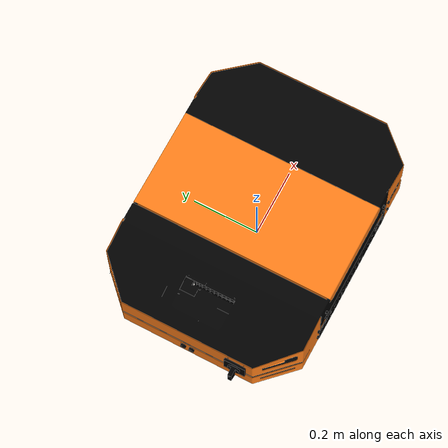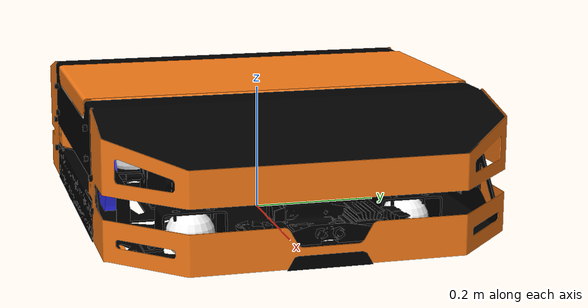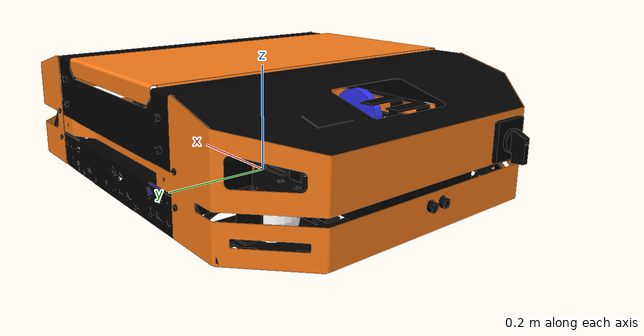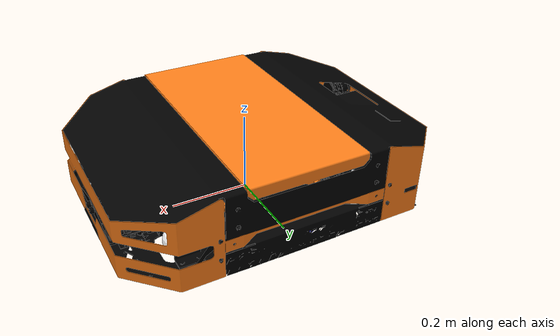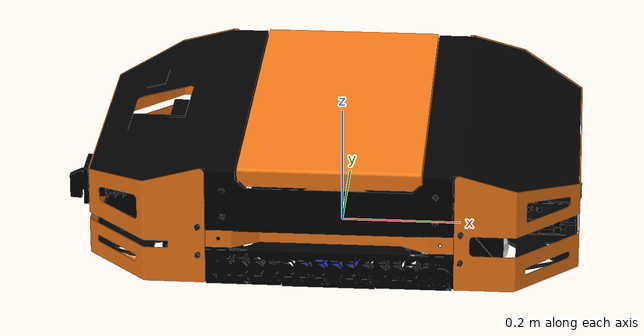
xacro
<?xml version="1.0"?>
<robot xmlns:xacro="http://www.ros.org/wiki/xacro" >

    <xacro:include filename="inertial_macros.xacro"/>

    <xacro:property name="chassis_length" value="0.86"/>
    <xacro:property name="chassis_width" value="0.62"/>
    <xacro:property name="chassis_height" value="0.15"/>
    <xacro:property name="chassis_mass" value="30.0"/>
    <xacro:property name="wheel_radius" value="0.0625"/>
    <xacro:property name="wheel_thickness" value="0.02"/>
    <xacro:property name="wheel_mass" value="0.5"/>
    <xacro:property name="wheel_offset_x" value="0"/>
    <xacro:property name="wheel_offset_y" value="0.25"/>
    <xacro:property name="wheel_offset_z" value="0.04"/>
    <xacro:property name="caster_wheel_radius" value="${0.03/2.0}"/>
    <xacro:property name="caster_wheel_mass" value="0.3"/>
    <xacro:property name="caster_wheel_offset_x" value="0.15"/>
    <xacro:property name="caster_wheel_offset_z" value="0.014"/>

    <material name="white">
        <color rgba="1 1 1 1" />
    </material>

    <material name="orange">
        <color rgba="1.0 0.5 0.1 1.0"/>
    </material>

    <material name="blue">
        <color rgba="0.2 0.2 1 1"/>
    </material>

    <material name="black">
        <color rgba="0 0 0 1"/>
    </material>

    <material name="red">
        <color rgba="1 0 0 1"/>
    </material>

    <!-- BASE LINK -->

    <link name="base_link">
    </link>

    <!-- BASE_FOOTPRINT LINK -->

    <joint name="base_footprint_joint" type="fixed">
        <parent link="base_link"/>
        <child link="base_footprint"/>
        <origin xyz="0 0 0" rpy="0 0 0"/>
    </joint>

    <link name="base_footprint">
    </link>

    <!-- CHASSIS LINK -->

    <joint name="chassis_joint" type="fixed">
        <parent link="base_link"/>
        <child link="chassis"/>
        <origin xyz="0 0 0.0225"/>
    </joint>

    <link name="chassis">
        <visual>
            <origin xyz="-0.445 -0.31 -0.015" rpy="${pi/2} 0 ${pi/2}"/>
            <geometry>
                <mesh filename="package://warehouse_real_description/meshes/chassis.STL" scale="0.001 0.001 0.001"/>
            </geometry>
            <material name="black"/>
        </visual>
        <!-- Rear Body Collision (75% Length, Raised 6cm for Caster Clearance) -->
        <collision>
            <origin xyz="${-chassis_length/8} 0 0.105" rpy="0 0 0"/>
            <geometry>
                <box size="${chassis_length*0.75} 0.45 0.09"/>
            </geometry>
        </collision>

        <!-- Front Top Lip Collision (25% Length, Top 5th for Lidar Clearance) -->
        <collision>
            <origin xyz="${3*chassis_length/8} 0 ${9*chassis_height/10}" rpy="0 0 0"/>
            <geometry>
                <box size="${chassis_length*0.25} 0.45 ${chassis_height/5}"/>
            </geometry>
        </collision>
        <xacro:inertial_box mass="0.5" x="${chassis_length}" y="${chassis_width}" z="${chassis_height}">
            <origin xyz="${chassis_length/2} 0 ${chassis_height/2}" rpy="0 0 0"/>
        </xacro:inertial_box>
    </link>

    <gazebo reference="chassis">
        <material>Gazebo/White</material>
    </gazebo>

    <!-- SIDE COVER LINK -->
    <joint name="side_cover_joint" type="fixed">
        <parent link="chassis"/>
        <child link="side_cover"/>
        <origin xyz="0 0 0" rpy="0 0 0"/>
    </joint>

    <link name="side_cover">
        <visual>
            <origin xyz="-0.407 -0.303 -0.0035" rpy="${pi/2} 0 ${pi/2}"/>
            <geometry>
                <mesh filename="package://warehouse_real_description/meshes/side_cover.STL" scale="0.001 0.001 0.001"/>
            </geometry>
            <material name="orange"/>
        </visual>
        <xacro:inertial_box mass="0.1" x="0.1" y="0.1" z="0.1">
            <origin xyz="0 0 0" rpy="0 0 0"/>
        </xacro:inertial_box>
    </link>

    <!-- LEFT WHEEL LINK -->

    <joint name="left_wheel_joint" type="continuous">
        <parent link="chassis"/>
        <child link="left_wheel"/>
        <origin xyz="0 ${wheel_offset_y} ${wheel_offset_z}" rpy="-${pi/2} 0 0" />
        <axis xyz="0 0 1"/>
    </joint>

    <link name="left_wheel">
        <visual>
            <geometry>
                <cylinder radius="${wheel_radius}" length="${wheel_thickness}"/>
            </geometry>
            <material name="blue"/>
        </visual>
        <collision>
            <geometry>
                <sphere radius="${wheel_radius}"/>
            </geometry>
        </collision>
        <xacro:inertial_cylinder mass="${wheel_mass}" length="${wheel_thickness}" radius="${wheel_radius}">
            <origin xyz="0 0 0" rpy="0 0 0"/>
        </xacro:inertial_cylinder>
    </link>

    <gazebo reference="left_wheel">
        <material>Gazebo/Orange</material>
    </gazebo>

    <!-- RIGHT WHEEL LINK -->

    <joint name="right_wheel_joint" type="continuous">
        <parent link="chassis"/>
        <child link="right_wheel"/>
        <origin xyz="0 ${-wheel_offset_y} ${wheel_offset_z}" rpy="${pi/2} 0 0" />
        <axis xyz="0 0 -1"/>
    </joint>

    <link name="right_wheel">
        <visual>
            <geometry>
                <cylinder radius="${wheel_radius}" length="${wheel_thickness}"/>
            </geometry>
            <material name="blue"/>
        </visual>
        <collision>
            <geometry>
                <sphere radius="${wheel_radius}"/>
            </geometry>
        </collision>
        <xacro:inertial_cylinder mass="${wheel_mass}" length="${wheel_thickness}" radius="${wheel_radius}">
            <origin xyz="0 0 0" rpy="0 0 0"/>
        </xacro:inertial_cylinder>
    </link>

    <gazebo reference="right_wheel">
        <material>Gazebo/Orange</material>
    </gazebo>

    <!-- CASTER WHEEL MACRO -->
    <xacro:macro name="caster_wheel" params="prefix x_pos y_pos">
        <joint name="${prefix}_caster_wheel_joint" type="fixed">
            <parent link="chassis"/>
            <child link="${prefix}_caster_wheel"/>
            <origin xyz="${x_pos} ${y_pos} ${caster_wheel_offset_z}"/>
        </joint>

        <link name="${prefix}_caster_wheel">
            <visual>
                <geometry>
                    <sphere radius="0.0365"/>
                </geometry>
                <material name="white"/>
            </visual>
            <collision>
                <geometry>
                    <sphere radius="0.0365"/>
                </geometry>
            </collision>
            <xacro:inertial_sphere mass="0.1" radius="0.0365">
                <origin xyz="0 0 0" rpy="0 0 0"/>
            </xacro:inertial_sphere>
        </link>

        <gazebo reference="${prefix}_caster_wheel">
            <material>Gazebo/White</material>
            <mu1 value="0.001"/>
            <mu2 value="0.001"/>
        </gazebo>
    </xacro:macro>

    <!-- CASTER WHEEL INSTANCES -->
    <xacro:caster_wheel prefix="front_right" x_pos="0.25" y_pos="-0.165"/>
    <xacro:caster_wheel prefix="front_left" x_pos="0.25" y_pos="0.165"/>
    <xacro:caster_wheel prefix="rear_right" x_pos="-0.25" y_pos="-0.165"/>
    <xacro:caster_wheel prefix="rear_left" x_pos="-0.25" y_pos="0.165"/>

    <!-- IMU LINK -->
    <link name="imu_link">
    <visual>
        <geometry>
            <box size="0.01 0.01 0.01"/>
        </geometry>
        <material name="black"/>
    </visual>
    </link>

    <joint name="imu_joint" type="fixed">
        <parent link="base_link"/>
        <child link="imu_link"/>
        <origin xyz="0 0 0.05" rpy="0 0 3.14159"/>
    </joint>

    <link name="lifter_link">
        <visual>
            <origin xyz="-0.15 -0.305 -0.19" rpy="${pi/2} 0 ${pi/2}"/>
            <geometry>
                <mesh filename="package://warehouse_real_description/meshes/lifter.STL" scale="0.001 0.001 0.001"/>
            </geometry>
            <material name="orange"/>
        </visual>
        <collision>
            <origin xyz="0 0 0" rpy="0 0 0"/>
            <geometry>
                <box size="0.3 ${chassis_width} 0.02"/>
            </geometry>
        </collision>
        <inertial>
            <mass value="0.1"/>
            <inertia ixx="0.001" ixy="0.0" ixz="0.0" iyy="0.001" iyz="0.0" izz="0.001"/>
        </inertial>
    </link>

    <joint name="lifter_joint" type="prismatic">
        <parent link="chassis"/> <child link="lifter_link"/>
        <origin xyz="0 0 0.19" rpy="0 0 0"/>
        <axis xyz="0 0 1"/>
        <limit lower="0.0" upper="0.20" effort="100.0" velocity="0.5"/>
    </joint>

    <!-- BACK CASTER WHEEL LINK -->

</robot>
